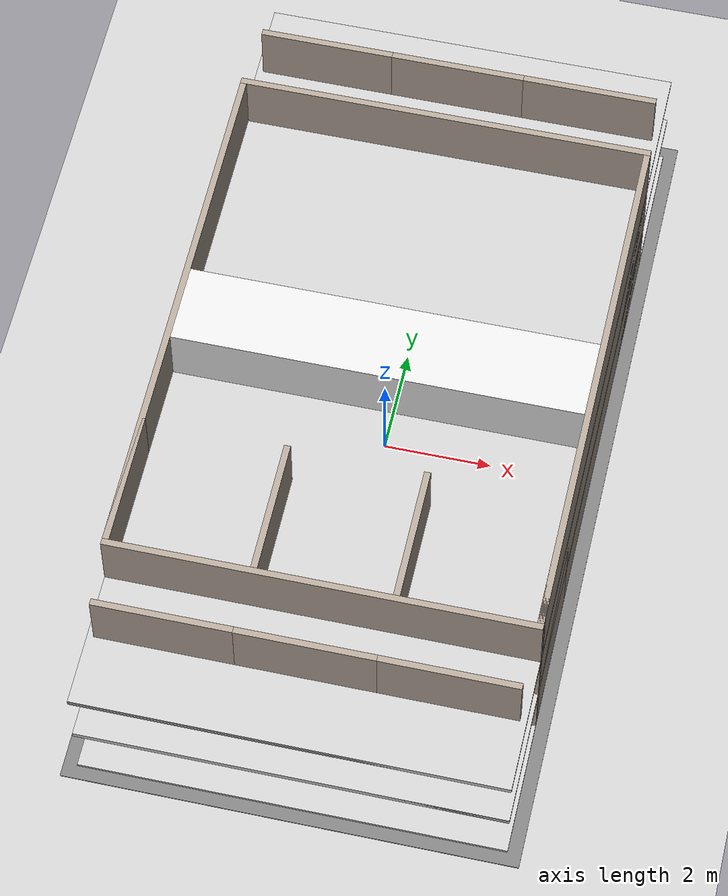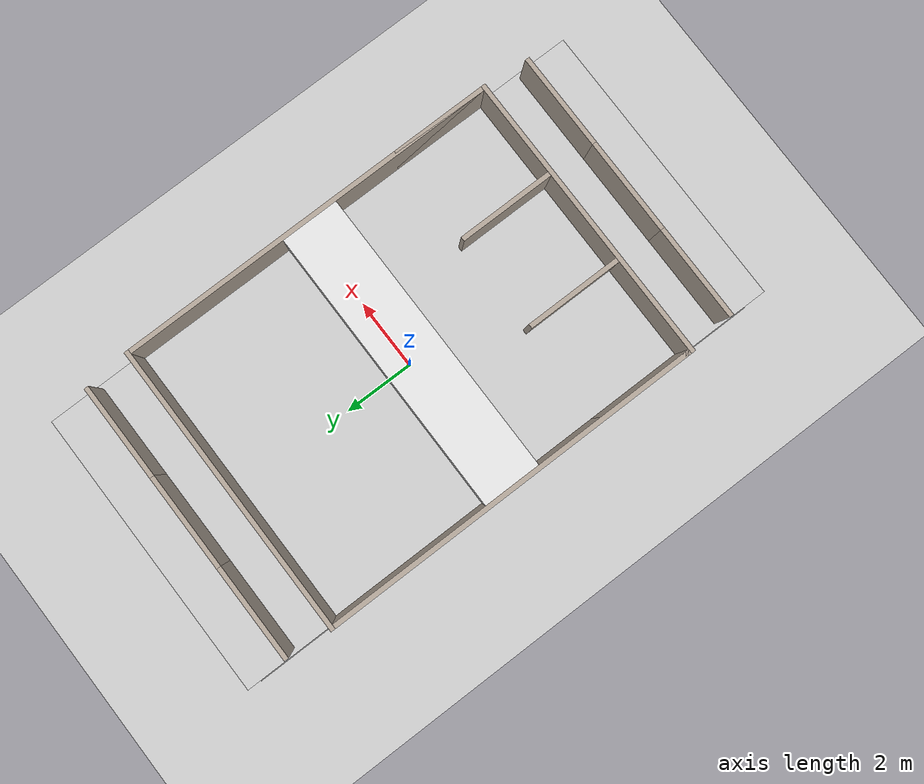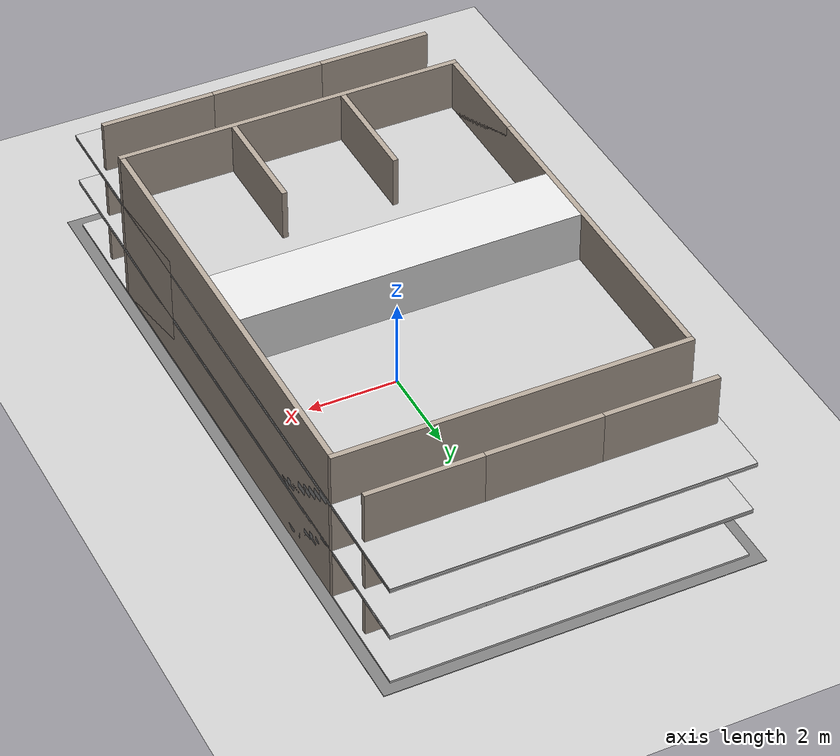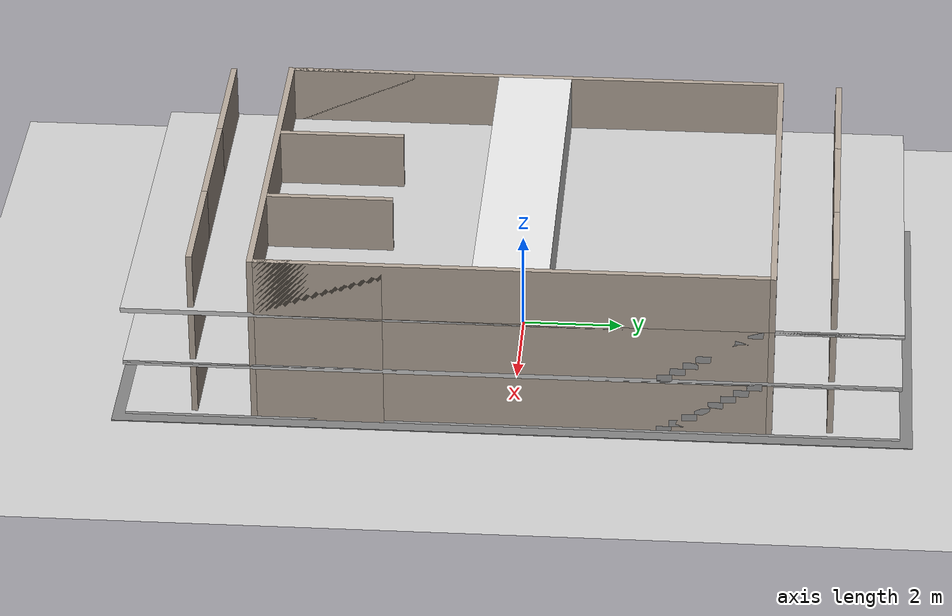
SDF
<?xml version="1.0" ?>
<sdf version="1.5">
    <world name="hotel_building">

        <gui fullscreen='false'>
        <camera name='user_camera'>
            <pose>15 -15 10 0 0.5 -2.0</pose>
            <view_controller>orbit</view_controller>
        </camera>
        </gui>

        <physics type="ode">
        <max_step_size>0.001</max_step_size>
        <real_time_factor>1</real_time_factor>
        <real_time_update_rate>1000</real_time_update_rate>
        <gravity>0 0 -9.81</gravity>
            <ode>
                <solver>
                <type>quick</type>
                <iters>50</iters>
                <sor>1.3</sor>
                </solver>
                <constraints>
                <cfm>0.0</cfm>
                <erp>0.2</erp>
                <contact_max_correcting_vel>10.0</contact_max_correcting_vel>
                <contact_surface_layer>0.001</contact_surface_layer>
                </constraints>
            </ode>
        </physics>

        <scene>
            <sky>
                <clouds>
                    <speed>12</speed>
                </clouds>
            </sky>
        </scene>

        <include>
            <uri>model://sun</uri>
        </include>

        <include>
            <uri>model://ground_plane</uri>
        </include>

        <include>
            <uri>model://hotel_building</uri>
            <pose>0 0 0 0 0 0</pose>
        </include>

    </world>
</sdf>

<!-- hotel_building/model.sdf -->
<sdf version='1.7'>
  <model name='HotelBuilding'>
    <static>true</static>
    <allow_auto_disable>1</allow_auto_disable>

    <link name='building_base'>
        <pose>0 0 -0.05 0 0 0</pose>
        <visual name='visual'>
            <geometry>
                <box>
                    <size>8.24 15.74 0.1</size>
                </box>
            </geometry>
            <material>
                <ambient>0.4 0.4 0.4 1</ambient>
                <diffuse>0.5 0.5 0.5 1</diffuse>
            </material>
        </visual>
        <collision name='collision'>
            <geometry>
                <box>
                    <size>8.24 15.74 0.1</size>
                </box>
            </geometry>
        </collision>
    </link>

        <link name='floor_base_f0'>
            <pose>0 0 0.0 0 0 0</pose>
            <visual name='visual'>
                <geometry>
                    <box>
                        <size>7.74 15.24 0.1</size>
                    </box>
                </geometry>
                <material>
                    <ambient>0.7 0.7 0.7 1</ambient>
                    <diffuse>0.8 0.8 0.8 1</diffuse>
                </material>
            </visual>
            <collision name='collision'>
                <geometry>
                    <box>
                        <size>7.74 15.24 0.1</size>
                    </box>
                </geometry>
                <surface>
                    <friction>
                        <ode>
                            <mu>1.0</mu>
                            <mu2>1.0</mu2>
                        </ode>
                    </friction>
                </surface>
            </collision>
        </link>

        <link name='corridor_f0'>
            <pose>0 0 0.6 0 0 0</pose>
            <visual name='visual'>
                <geometry>
                    <box>
                        <size>7.5 1.5 1.2</size>
                    </box>
                </geometry>
                <material>
                    <ambient>0.85 0.85 0.85 1</ambient>
                    <diffuse>0.9 0.9 0.9 1</diffuse>
                </material>
            </visual>
            <collision name='collision'>
                <geometry>
                    <box>
                        <size>7.5 1.5 1.2</size>
                    </box>
                </geometry>
                <surface>
                    <friction>
                        <ode>
                            <mu>1.0</mu>
                            <mu2>1.0</mu2>
                        </ode>
                    </friction>
                </surface>
            </collision>
        </link>

        <link name='corridor_front_wall_f0'>
            <pose>0 5.06 0.6 0 0 0</pose>
            <visual name='visual'>
                <geometry>
                    <box>
                        <size>7.74 0.12 1.2</size>
                    </box>
                </geometry>
                <material>
                    <ambient>0.6 0.55 0.5 1</ambient>
                    <diffuse>0.7 0.65 0.6 1</diffuse>
                </material>
            </visual>
            <collision name='collision'>
                <geometry>
                    <box>
                        <size>7.74 0.12 1.2</size>
                    </box>
                </geometry>
            </collision>
        </link>

        <link name='corridor_rear_wall_f0'>
            <pose>0 -5.06 0.6 0 0 0</pose>
            <visual name='visual'>
                <geometry>
                    <box>
                        <size>7.74 0.12 1.2</size>
                    </box>
                </geometry>
                <material>
                    <ambient>0.6 0.55 0.5 1</ambient>
                    <diffuse>0.7 0.65 0.6 1</diffuse>
                </material>
            </visual>
            <collision name='collision'>
                <geometry>
                    <box>
                        <size>7.74 0.12 1.2</size>
                    </box>
                </geometry>
            </collision>
        </link>

        <link name='room_front_wall_f0_r0'>
            <pose>-2.5 6.25 0.6 0 0 0</pose>
            <visual name='visual'>
                <geometry>
                    <box>
                        <size>2.5 0.12 1.2</size>
                    </box>
                </geometry>
                <material>
                    <ambient>0.6 0.55 0.5 1</ambient>
                    <diffuse>0.7 0.65 0.6 1</diffuse>
                </material>
            </visual>
            <collision name='collision'>
                <geometry>
                    <box>
                        <size>2.5 0.12 1.2</size>
                    </box>
                </geometry>
            </collision>
        </link>

        <link name='room_rear_wall_f0_r0'>
            <pose>-2.5 -6.25 0.6 0 0 0</pose>
            <visual name='visual'>
                <geometry>
                    <box>
                        <size>2.5 0.12 1.2</size>
                    </box>
                </geometry>
                <material>
                    <ambient>0.6 0.55 0.5 1</ambient>
                    <diffuse>0.7 0.65 0.6 1</diffuse>
                </material>
            </visual>
            <collision name='collision'>
                <geometry>
                    <box>
                        <size>2.5 0.12 1.2</size>
                    </box>
                </geometry>
            </collision>
        </link>

        <link name='room_side_wall_f0_r0_left'>
            <pose>-3.81 -3.75 0.6 0 0 0</pose>
            <visual name='visual'>
                <geometry>
                    <box>
                        <size>0.12 2.5 1.2</size>
                    </box>
                </geometry>
                <material>
                    <ambient>0.6 0.55 0.5 1</ambient>
                    <diffuse>0.7 0.65 0.6 1</diffuse>
                </material>
            </visual>
            <collision name='collision'>
                <geometry>
                    <box>
                        <size>0.12 2.5 1.2</size>
                    </box>
                </geometry>
            </collision>
        </link>

        <link name='room_divider_f0_r0'>
            <pose>-1.19 -3.75 0.6 0 0 0</pose>
            <visual name='visual'>
                <geometry>
                    <box>
                        <size>0.12 2.5 1.2</size>
                    </box>
                </geometry>
                <material>
                    <ambient>0.6 0.55 0.5 1</ambient>
                    <diffuse>0.7 0.65 0.6 1</diffuse>
                </material>
            </visual>
            <collision name='collision'>
                <geometry>
                    <box>
                        <size>0.12 2.5 1.2</size>
                    </box>
                </geometry>
            </collision>
        </link>

        <link name='room_front_wall_f0_r1'>
            <pose>0.0 6.25 0.6 0 0 0</pose>
            <visual name='visual'>
                <geometry>
                    <box>
                        <size>2.5 0.12 1.2</size>
                    </box>
                </geometry>
                <material>
                    <ambient>0.6 0.55 0.5 1</ambient>
                    <diffuse>0.7 0.65 0.6 1</diffuse>
                </material>
            </visual>
            <collision name='collision'>
                <geometry>
                    <box>
                        <size>2.5 0.12 1.2</size>
                    </box>
                </geometry>
            </collision>
        </link>

        <link name='room_rear_wall_f0_r1'>
            <pose>0.0 -6.25 0.6 0 0 0</pose>
            <visual name='visual'>
                <geometry>
                    <box>
                        <size>2.5 0.12 1.2</size>
                    </box>
                </geometry>
                <material>
                    <ambient>0.6 0.55 0.5 1</ambient>
                    <diffuse>0.7 0.65 0.6 1</diffuse>
                </material>
            </visual>
            <collision name='collision'>
                <geometry>
                    <box>
                        <size>2.5 0.12 1.2</size>
                    </box>
                </geometry>
            </collision>
        </link>

        <link name='room_side_wall_f0_r1_left'>
            <pose>-3.81 -3.75 0.6 0 0 0</pose>
            <visual name='visual'>
                <geometry>
                    <box>
                        <size>0.12 2.5 1.2</size>
                    </box>
                </geometry>
                <material>
                    <ambient>0.6 0.55 0.5 1</ambient>
                    <diffuse>0.7 0.65 0.6 1</diffuse>
                </material>
            </visual>
            <collision name='collision'>
                <geometry>
                    <box>
                        <size>0.12 2.5 1.2</size>
                    </box>
                </geometry>
            </collision>
        </link>

        <link name='room_divider_f0_r1'>
            <pose>1.31 -3.75 0.6 0 0 0</pose>
            <visual name='visual'>
                <geometry>
                    <box>
                        <size>0.12 2.5 1.2</size>
                    </box>
                </geometry>
                <material>
                    <ambient>0.6 0.55 0.5 1</ambient>
                    <diffuse>0.7 0.65 0.6 1</diffuse>
                </material>
            </visual>
            <collision name='collision'>
                <geometry>
                    <box>
                        <size>0.12 2.5 1.2</size>
                    </box>
                </geometry>
            </collision>
        </link>

        <link name='room_front_wall_f0_r2'>
            <pose>2.5 6.25 0.6 0 0 0</pose>
            <visual name='visual'>
                <geometry>
                    <box>
                        <size>2.5 0.12 1.2</size>
                    </box>
                </geometry>
                <material>
                    <ambient>0.6 0.55 0.5 1</ambient>
                    <diffuse>0.7 0.65 0.6 1</diffuse>
                </material>
            </visual>
            <collision name='collision'>
                <geometry>
                    <box>
                        <size>2.5 0.12 1.2</size>
                    </box>
                </geometry>
            </collision>
        </link>

        <link name='room_rear_wall_f0_r2'>
            <pose>2.5 -6.25 0.6 0 0 0</pose>
            <visual name='visual'>
                <geometry>
                    <box>
                        <size>2.5 0.12 1.2</size>
                    </box>
                </geometry>
                <material>
                    <ambient>0.6 0.55 0.5 1</ambient>
                    <diffuse>0.7 0.65 0.6 1</diffuse>
                </material>
            </visual>
            <collision name='collision'>
                <geometry>
                    <box>
                        <size>2.5 0.12 1.2</size>
                    </box>
                </geometry>
            </collision>
        </link>

        <link name='room_side_wall_f0_r2_left'>
            <pose>-3.81 -3.75 0.6 0 0 0</pose>
            <visual name='visual'>
                <geometry>
                    <box>
                        <size>0.12 2.5 1.2</size>
                    </box>
                </geometry>
                <material>
                    <ambient>0.6 0.55 0.5 1</ambient>
                    <diffuse>0.7 0.65 0.6 1</diffuse>
                </material>
            </visual>
            <collision name='collision'>
                <geometry>
                    <box>
                        <size>0.12 2.5 1.2</size>
                    </box>
                </geometry>
            </collision>
        </link>

        <link name='room_side_wall_f0_r2_right'>
            <pose>3.81 -3.75 0.6 0 0 0</pose>
            <visual name='visual'>
                <geometry>
                    <box>
                        <size>0.12 2.5 1.2</size>
                    </box>
                </geometry>
                <material>
                    <ambient>0.6 0.55 0.5 1</ambient>
                    <diffuse>0.7 0.65 0.6 1</diffuse>
                </material>
            </visual>
            <collision name='collision'>
                <geometry>
                    <box>
                        <size>0.12 2.5 1.2</size>
                    </box>
                </geometry>
            </collision>
        </link>

        <link name='corridor_left_wall_f0'>
            <pose>-3.81 0 0.6 0 0 0</pose>
            <visual name='visual'>
                <geometry>
                    <box>
                        <size>0.12 10.0 1.2</size>
                    </box>
                </geometry>
                <material>
                    <ambient>0.6 0.55 0.5 1</ambient>
                    <diffuse>0.7 0.65 0.6 1</diffuse>
                </material>
            </visual>
            <collision name='collision'>
                <geometry>
                    <box>
                        <size>0.12 10.0 1.2</size>
                    </box>
                </geometry>
            </collision>
        </link>

        <link name='corridor_right_wall_f0'>
            <pose>3.81 0 0.6 0 0 0</pose>
            <visual name='visual'>
                <geometry>
                    <box>
                        <size>0.12 10.0 1.2</size>
                    </box>
                </geometry>
                <material>
                    <ambient>0.6 0.55 0.5 1</ambient>
                    <diffuse>0.7 0.65 0.6 1</diffuse>
                </material>
            </visual>
            <collision name='collision'>
                <geometry>
                    <box>
                        <size>0.12 10.0 1.2</size>
                    </box>
                </geometry>
            </collision>
        </link>

        <link name='ceiling_f0'>
            <pose>0 0 1.2 0 0 0</pose>
            <visual name='visual'>
                <geometry>
                    <box>
                        <size>7.74 15.24 0.05</size>
                    </box>
                </geometry>
                <material>
                    <ambient>0.9 0.9 0.9 1</ambient>
                    <diffuse>1.0 1.0 1.0 1</diffuse>
                </material>
            </visual>
            <collision name='collision'>
                <geometry>
                    <box>
                        <size>7.74 15.24 0.05</size>
                    </box>
                </geometry>
            </collision>
        </link>

        <link name='floor_base_f1'>
            <pose>0 0 1.2 0 0 0</pose>
            <visual name='visual'>
                <geometry>
                    <box>
                        <size>7.74 15.24 0.1</size>
                    </box>
                </geometry>
                <material>
                    <ambient>0.7 0.7 0.7 1</ambient>
                    <diffuse>0.8 0.8 0.8 1</diffuse>
                </material>
            </visual>
            <collision name='collision'>
                <geometry>
                    <box>
                        <size>7.74 15.24 0.1</size>
                    </box>
                </geometry>
                <surface>
                    <friction>
                        <ode>
                            <mu>1.0</mu>
                            <mu2>1.0</mu2>
                        </ode>
                    </friction>
                </surface>
            </collision>
        </link>

        <link name='corridor_f1'>
            <pose>0 0 1.7999999999999998 0 0 0</pose>
            <visual name='visual'>
                <geometry>
                    <box>
                        <size>7.5 1.5 1.2</size>
                    </box>
                </geometry>
                <material>
                    <ambient>0.85 0.85 0.85 1</ambient>
                    <diffuse>0.9 0.9 0.9 1</diffuse>
                </material>
            </visual>
            <collision name='collision'>
                <geometry>
                    <box>
                        <size>7.5 1.5 1.2</size>
                    </box>
                </geometry>
                <surface>
                    <friction>
                        <ode>
                            <mu>1.0</mu>
                            <mu2>1.0</mu2>
                        </ode>
                    </friction>
                </surface>
            </collision>
        </link>

        <link name='corridor_front_wall_f1'>
            <pose>0 5.06 1.7999999999999998 0 0 0</pose>
            <visual name='visual'>
                <geometry>
                    <box>
                        <size>7.74 0.12 1.2</size>
                    </box>
                </geometry>
                <material>
                    <ambient>0.6 0.55 0.5 1</ambient>
                    <diffuse>0.7 0.65 0.6 1</diffuse>
                </material>
            </visual>
            <collision name='collision'>
                <geometry>
                    <box>
                        <size>7.74 0.12 1.2</size>
                    </box>
                </geometry>
            </collision>
        </link>

        <link name='corridor_rear_wall_f1'>
            <pose>0 -5.06 1.7999999999999998 0 0 0</pose>
            <visual name='visual'>
                <geometry>
                    <box>
                        <size>7.74 0.12 1.2</size>
                    </box>
                </geometry>
                <material>
                    <ambient>0.6 0.55 0.5 1</ambient>
                    <diffuse>0.7 0.65 0.6 1</diffuse>
                </material>
            </visual>
            <collision name='collision'>
                <geometry>
                    <box>
                        <size>7.74 0.12 1.2</size>
                    </box>
                </geometry>
            </collision>
        </link>

        <link name='room_front_wall_f1_r0'>
            <pose>-2.5 6.25 1.7999999999999998 0 0 0</pose>
            <visual name='visual'>
                <geometry>
                    <box>
                        <size>2.5 0.12 1.2</size>
                    </box>
                </geometry>
                <material>
                    <ambient>0.6 0.55 0.5 1</ambient>
                    <diffuse>0.7 0.65 0.6 1</diffuse>
                </material>
            </visual>
            <collision name='collision'>
                <geometry>
                    <box>
                        <size>2.5 0.12 1.2</size>
                    </box>
                </geometry>
            </collision>
        </link>

        <link name='room_rear_wall_f1_r0'>
            <pose>-2.5 -6.25 1.7999999999999998 0 0 0</pose>
            <visual name='visual'>
                <geometry>
                    <box>
                        <size>2.5 0.12 1.2</size>
                    </box>
                </geometry>
                <material>
                    <ambient>0.6 0.55 0.5 1</ambient>
                    <diffuse>0.7 0.65 0.6 1</diffuse>
                </material>
            </visual>
            <collision name='collision'>
                <geometry>
                    <box>
                        <size>2.5 0.12 1.2</size>
                    </box>
                </geometry>
            </collision>
        </link>

        <link name='room_side_wall_f1_r0_left'>
            <pose>-3.81 -3.75 1.7999999999999998 0 0 0</pose>
            <visual name='visual'>
                <geometry>
                    <box>
                        <size>0.12 2.5 1.2</size>
                    </box>
                </geometry>
                <material>
                    <ambient>0.6 0.55 0.5 1</ambient>
                    <diffuse>0.7 0.65 0.6 1</diffuse>
                </material>
            </visual>
            <collision name='collision'>
                <geometry>
                    <box>
                        <size>0.12 2.5 1.2</size>
                    </box>
                </geometry>
            </collision>
        </link>

        <link name='room_divider_f1_r0'>
            <pose>-1.19 -3.75 1.7999999999999998 0 0 0</pose>
            <visual name='visual'>
                <geometry>
                    <box>
                        <size>0.12 2.5 1.2</size>
                    </box>
                </geometry>
                <material>
                    <ambient>0.6 0.55 0.5 1</ambient>
                    <diffuse>0.7 0.65 0.6 1</diffuse>
                </material>
            </visual>
            <collision name='collision'>
                <geometry>
                    <box>
                        <size>0.12 2.5 1.2</size>
                    </box>
                </geometry>
            </collision>
        </link>

        <link name='room_front_wall_f1_r1'>
            <pose>0.0 6.25 1.7999999999999998 0 0 0</pose>
            <visual name='visual'>
                <geometry>
                    <box>
                        <size>2.5 0.12 1.2</size>
                    </box>
                </geometry>
                <material>
                    <ambient>0.6 0.55 0.5 1</ambient>
                    <diffuse>0.7 0.65 0.6 1</diffuse>
                </material>
            </visual>
            <collision name='collision'>
                <geometry>
                    <box>
                        <size>2.5 0.12 1.2</size>
                    </box>
                </geometry>
            </collision>
        </link>

        <link name='room_rear_wall_f1_r1'>
            <pose>0.0 -6.25 1.7999999999999998 0 0 0</pose>
            <visual name='visual'>
                <geometry>
                    <box>
                        <size>2.5 0.12 1.2</size>
                    </box>
                </geometry>
                <material>
                    <ambient>0.6 0.55 0.5 1</ambient>
                    <diffuse>0.7 0.65 0.6 1</diffuse>
                </material>
            </visual>
            <collision name='collision'>
                <geometry>
                    <box>
                        <size>2.5 0.12 1.2</size>
                    </box>
                </geometry>
            </collision>
        </link>

        <link name='room_side_wall_f1_r1_left'>
            <pose>-3.81 -3.75 1.7999999999999998 0 0 0</pose>
            <visual name='visual'>
                <geometry>
                    <box>
                        <size>0.12 2.5 1.2</size>
                    </box>
                </geometry>
                <material>
                    <ambient>0.6 0.55 0.5 1</ambient>
                    <diffuse>0.7 0.65 0.6 1</diffuse>
                </material>
            </visual>
            <collision name='collision'>
                <geometry>
                    <box>
                        <size>0.12 2.5 1.2</size>
                    </box>
                </geometry>
            </collision>
        </link>

        <link name='room_divider_f1_r1'>
            <pose>1.31 -3.75 1.7999999999999998 0 0 0</pose>
            <visual name='visual'>
                <geometry>
                    <box>
                        <size>0.12 2.5 1.2</size>
                    </box>
                </geometry>
                <material>
                    <ambient>0.6 0.55 0.5 1</ambient>
                    <diffuse>0.7 0.65 0.6 1</diffuse>
                </material>
            </visual>
            <collision name='collision'>
                <geometry>
                    <box>
                        <size>0.12 2.5 1.2</size>
                    </box>
                </geometry>
            </collision>
        </link>

        <link name='room_front_wall_f1_r2'>
            <pose>2.5 6.25 1.7999999999999998 0 0 0</pose>
            <visual name='visual'>
                <geometry>
                    <box>
                        <size>2.5 0.12 1.2</size>
                    </box>
                </geometry>
                <material>
                    <ambient>0.6 0.55 0.5 1</ambient>
                    <diffuse>0.7 0.65 0.6 1</diffuse>
                </material>
            </visual>
            <collision name='collision'>
                <geometry>
                    <box>
                        <size>2.5 0.12 1.2</size>
                    </box>
                </geometry>
            </collision>
        </link>

        <link name='room_rear_wall_f1_r2'>
            <pose>2.5 -6.25 1.7999999999999998 0 0 0</pose>
            <visual name='visual'>
                <geometry>
                    <box>
                        <size>2.5 0.12 1.2</size>
                    </box>
                </geometry>
                <material>
                    <ambient>0.6 0.55 0.5 1</ambient>
                    <diffuse>0.7 0.65 0.6 1</diffuse>
                </material>
            </visual>
            <collision name='collision'>
                <geometry>
                    <box>
                        <size>2.5 0.12 1.2</size>
                    </box>
                </geometry>
            </collision>
        </link>

        <link name='room_side_wall_f1_r2_left'>
            <pose>-3.81 -3.75 1.7999999999999998 0 0 0</pose>
            <visual name='visual'>
                <geometry>
                    <box>
                        <size>0.12 2.5 1.2</size>
                    </box>
                </geometry>
                <material>
                    <ambient>0.6 0.55 0.5 1</ambient>
                    <diffuse>0.7 0.65 0.6 1</diffuse>
                </material>
            </visual>
            <collision name='collision'>
                <geometry>
                    <box>
                        <size>0.12 2.5 1.2</size>
                    </box>
                </geometry>
            </collision>
        </link>

        <link name='room_side_wall_f1_r2_right'>
            <pose>3.81 -3.75 1.7999999999999998 0 0 0</pose>
            <visual name='visual'>
                <geometry>
                    <box>
                        <size>0.12 2.5 1.2</size>
                    </box>
                </geometry>
                <material>
                    <ambient>0.6 0.55 0.5 1</ambient>
                    <diffuse>0.7 0.65 0.6 1</diffuse>
                </material>
            </visual>
            <collision name='collision'>
                <geometry>
                    <box>
                        <size>0.12 2.5 1.2</size>
                    </box>
                </geometry>
            </collision>
        </link>

        <link name='corridor_left_wall_f1'>
            <pose>-3.81 0 1.7999999999999998 0 0 0</pose>
            <visual name='visual'>
                <geometry>
                    <box>
                        <size>0.12 10.0 1.2</size>
                    </box>
                </geometry>
                <material>
                    <ambient>0.6 0.55 0.5 1</ambient>
                    <diffuse>0.7 0.65 0.6 1</diffuse>
                </material>
            </visual>
            <collision name='collision'>
                <geometry>
                    <box>
                        <size>0.12 10.0 1.2</size>
                    </box>
                </geometry>
            </collision>
        </link>

        <link name='corridor_right_wall_f1'>
            <pose>3.81 0 1.7999999999999998 0 0 0</pose>
            <visual name='visual'>
                <geometry>
                    <box>
                        <size>0.12 10.0 1.2</size>
                    </box>
                </geometry>
                <material>
                    <ambient>0.6 0.55 0.5 1</ambient>
                    <diffuse>0.7 0.65 0.6 1</diffuse>
                </material>
            </visual>
            <collision name='collision'>
                <geometry>
                    <box>
                        <size>0.12 10.0 1.2</size>
                    </box>
                </geometry>
            </collision>
        </link>

        <link name='ceiling_f1'>
            <pose>0 0 2.4 0 0 0</pose>
            <visual name='visual'>
                <geometry>
                    <box>
                        <size>7.74 15.24 0.05</size>
                    </box>
                </geometry>
                <material>
                    <ambient>0.9 0.9 0.9 1</ambient>
                    <diffuse>1.0 1.0 1.0 1</diffuse>
                </material>
            </visual>
            <collision name='collision'>
                <geometry>
                    <box>
                        <size>7.74 15.24 0.05</size>
                    </box>
                </geometry>
            </collision>
        </link>

        <link name='floor_base_f2'>
            <pose>0 0 2.4 0 0 0</pose>
            <visual name='visual'>
                <geometry>
                    <box>
                        <size>7.74 15.24 0.1</size>
                    </box>
                </geometry>
                <material>
                    <ambient>0.7 0.7 0.7 1</ambient>
                    <diffuse>0.8 0.8 0.8 1</diffuse>
                </material>
            </visual>
            <collision name='collision'>
                <geometry>
                    <box>
                        <size>7.74 15.24 0.1</size>
                    </box>
                </geometry>
                <surface>
                    <friction>
                        <ode>
                            <mu>1.0</mu>
                            <mu2>1.0</mu2>
                        </ode>
                    </friction>
                </surface>
            </collision>
        </link>

        <link name='corridor_f2'>
            <pose>0 0 3.0 0 0 0</pose>
            <visual name='visual'>
                <geometry>
                    <box>
                        <size>7.5 1.5 1.2</size>
                    </box>
                </geometry>
                <material>
                    <ambient>0.85 0.85 0.85 1</ambient>
                    <diffuse>0.9 0.9 0.9 1</diffuse>
                </material>
            </visual>
            <collision name='collision'>
                <geometry>
                    <box>
                        <size>7.5 1.5 1.2</size>
                    </box>
                </geometry>
                <surface>
                    <friction>
                        <ode>
                            <mu>1.0</mu>
                            <mu2>1.0</mu2>
                        </ode>
                    </friction>
                </surface>
            </collision>
        </link>

        <link name='corridor_front_wall_f2'>
            <pose>0 5.06 3.0 0 0 0</pose>
            <visual name='visual'>
                <geometry>
                    <box>
                        <size>7.74 0.12 1.2</size>
                    </box>
                </geometry>
                <material>
                    <ambient>0.6 0.55 0.5 1</ambient>
                    <diffuse>0.7 0.65 0.6 1</diffuse>
                </material>
            </visual>
            <collision name='collision'>
                <geometry>
                    <box>
                        <size>7.74 0.12 1.2</size>
                    </box>
                </geometry>
            </collision>
        </link>

        <link name='corridor_rear_wall_f2'>
            <pose>0 -5.06 3.0 0 0 0</pose>
            <visual name='visual'>
                <geometry>
                    <box>
                        <size>7.74 0.12 1.2</size>
                    </box>
                </geometry>
                <material>
                    <ambient>0.6 0.55 0.5 1</ambient>
                    <diffuse>0.7 0.65 0.6 1</diffuse>
                </material>
            </visual>
            <collision name='collision'>
                <geometry>
                    <box>
                        <size>7.74 0.12 1.2</size>
                    </box>
                </geometry>
            </collision>
        </link>

        <link name='room_front_wall_f2_r0'>
            <pose>-2.5 6.25 3.0 0 0 0</pose>
            <visual name='visual'>
                <geometry>
                    <box>
                        <size>2.5 0.12 1.2</size>
                    </box>
                </geometry>
                <material>
                    <ambient>0.6 0.55 0.5 1</ambient>
                    <diffuse>0.7 0.65 0.6 1</diffuse>
                </material>
            </visual>
            <collision name='collision'>
                <geometry>
                    <box>
                        <size>2.5 0.12 1.2</size>
                    </box>
                </geometry>
            </collision>
        </link>

        <link name='room_rear_wall_f2_r0'>
            <pose>-2.5 -6.25 3.0 0 0 0</pose>
            <visual name='visual'>
                <geometry>
                    <box>
                        <size>2.5 0.12 1.2</size>
                    </box>
                </geometry>
                <material>
                    <ambient>0.6 0.55 0.5 1</ambient>
                    <diffuse>0.7 0.65 0.6 1</diffuse>
                </material>
            </visual>
            <collision name='collision'>
                <geometry>
                    <box>
                        <size>2.5 0.12 1.2</size>
                    </box>
                </geometry>
            </collision>
        </link>

        <link name='room_side_wall_f2_r0_left'>
            <pose>-3.81 -3.75 3.0 0 0 0</pose>
            <visual name='visual'>
                <geometry>
                    <box>
                        <size>0.12 2.5 1.2</size>
                    </box>
                </geometry>
                <material>
                    <ambient>0.6 0.55 0.5 1</ambient>
                    <diffuse>0.7 0.65 0.6 1</diffuse>
                </material>
            </visual>
            <collision name='collision'>
                <geometry>
                    <box>
                        <size>0.12 2.5 1.2</size>
                    </box>
                </geometry>
            </collision>
        </link>

        <link name='room_divider_f2_r0'>
            <pose>-1.19 -3.75 3.0 0 0 0</pose>
            <visual name='visual'>
                <geometry>
                    <box>
                        <size>0.12 2.5 1.2</size>
                    </box>
                </geometry>
                <material>
                    <ambient>0.6 0.55 0.5 1</ambient>
                    <diffuse>0.7 0.65 0.6 1</diffuse>
                </material>
            </visual>
            <collision name='collision'>
                <geometry>
                    <box>
                        <size>0.12 2.5 1.2</size>
                    </box>
                </geometry>
            </collision>
        </link>

        <link name='room_front_wall_f2_r1'>
            <pose>0.0 6.25 3.0 0 0 0</pose>
            <visual name='visual'>
                <geometry>
                    <box>
                        <size>2.5 0.12 1.2</size>
                    </box>
                </geometry>
                <material>
                    <ambient>0.6 0.55 0.5 1</ambient>
                    <diffuse>0.7 0.65 0.6 1</diffuse>
                </material>
            </visual>
            <collision name='collision'>
                <geometry>
                    <box>
                        <size>2.5 0.12 1.2</size>
                    </box>
                </geometry>
            </collision>
        </link>

        <link name='room_rear_wall_f2_r1'>
            <pose>0.0 -6.25 3.0 0 0 0</pose>
            <visual name='visual'>
                <geometry>
                    <box>
                        <size>2.5 0.12 1.2</size>
                    </box>
                </geometry>
                <material>
                    <ambient>0.6 0.55 0.5 1</ambient>
                    <diffuse>0.7 0.65 0.6 1</diffuse>
                </material>
            </visual>
            <collision name='collision'>
                <geometry>
                    <box>
                        <size>2.5 0.12 1.2</size>
                    </box>
                </geometry>
            </collision>
        </link>

        <link name='room_side_wall_f2_r1_left'>
            <pose>-3.81 -3.75 3.0 0 0 0</pose>
            <visual name='visual'>
                <geometry>
                    <box>
                        <size>0.12 2.5 1.2</size>
                    </box>
                </geometry>
                <material>
                    <ambient>0.6 0.55 0.5 1</ambient>
                    <diffuse>0.7 0.65 0.6 1</diffuse>
                </material>
            </visual>
            <collision name='collision'>
                <geometry>
                    <box>
                        <size>0.12 2.5 1.2</size>
                    </box>
                </geometry>
            </collision>
        </link>

        <link name='room_divider_f2_r1'>
            <pose>1.31 -3.75 3.0 0 0 0</pose>
            <visual name='visual'>
                <geometry>
                    <box>
                        <size>0.12 2.5 1.2</size>
                    </box>
                </geometry>
                <material>
                    <ambient>0.6 0.55 0.5 1</ambient>
                    <diffuse>0.7 0.65 0.6 1</diffuse>
                </material>
            </visual>
            <collision name='collision'>
                <geometry>
                    <box>
                        <size>0.12 2.5 1.2</size>
                    </box>
                </geometry>
            </collision>
        </link>

        <link name='room_front_wall_f2_r2'>
            <pose>2.5 6.25 3.0 0 0 0</pose>
            <visual name='visual'>
                <geometry>
                    <box>
                        <size>2.5 0.12 1.2</size>
                    </box>
                </geometry>
                <material>
                    <ambient>0.6 0.55 0.5 1</ambient>
                    <diffuse>0.7 0.65 0.6 1</diffuse>
                </material>
            </visual>
            <collision name='collision'>
                <geometry>
                    <box>
                        <size>2.5 0.12 1.2</size>
                    </box>
                </geometry>
            </collision>
        </link>

        <link name='room_rear_wall_f2_r2'>
            <pose>2.5 -6.25 3.0 0 0 0</pose>
            <visual name='visual'>
                <geometry>
                    <box>
                        <size>2.5 0.12 1.2</size>
                    </box>
                </geometry>
                <material>
                    <ambient>0.6 0.55 0.5 1</ambient>
                    <diffuse>0.7 0.65 0.6 1</diffuse>
                </material>
            </visual>
            <collision name='collision'>
                <geometry>
                    <box>
                        <size>2.5 0.12 1.2</size>
                    </box>
                </geometry>
            </collision>
        </link>

        <link name='room_side_wall_f2_r2_left'>
            <pose>-3.81 -3.75 3.0 0 0 0</pose>
            <visual name='visual'>
                <geometry>
                    <box>
                        <size>0.12 2.5 1.2</size>
                    </box>
                </geometry>
                <material>
                    <ambient>0.6 0.55 0.5 1</ambient>
                    <diffuse>0.7 0.65 0.6 1</diffuse>
                </material>
            </visual>
            <collision name='collision'>
                <geometry>
                    <box>
                        <size>0.12 2.5 1.2</size>
                    </box>
                </geometry>
            </collision>
        </link>

        <link name='room_side_wall_f2_r2_right'>
            <pose>3.81 -3.75 3.0 0 0 0</pose>
            <visual name='visual'>
                <geometry>
                    <box>
                        <size>0.12 2.5 1.2</size>
                    </box>
                </geometry>
                <material>
                    <ambient>0.6 0.55 0.5 1</ambient>
                    <diffuse>0.7 0.65 0.6 1</diffuse>
                </material>
            </visual>
            <collision name='collision'>
                <geometry>
                    <box>
                        <size>0.12 2.5 1.2</size>
                    </box>
                </geometry>
            </collision>
        </link>

        <link name='corridor_left_wall_f2'>
            <pose>-3.81 0 3.0 0 0 0</pose>
            <visual name='visual'>
                <geometry>
                    <box>
                        <size>0.12 10.0 1.2</size>
                    </box>
                </geometry>
                <material>
                    <ambient>0.6 0.55 0.5 1</ambient>
                    <diffuse>0.7 0.65 0.6 1</diffuse>
                </material>
            </visual>
            <collision name='collision'>
                <geometry>
                    <box>
                        <size>0.12 10.0 1.2</size>
                    </box>
                </geometry>
            </collision>
        </link>

        <link name='corridor_right_wall_f2'>
            <pose>3.81 0 3.0 0 0 0</pose>
            <visual name='visual'>
                <geometry>
                    <box>
                        <size>0.12 10.0 1.2</size>
                    </box>
                </geometry>
                <material>
                    <ambient>0.6 0.55 0.5 1</ambient>
                    <diffuse>0.7 0.65 0.6 1</diffuse>
                </material>
            </visual>
            <collision name='collision'>
                <geometry>
                    <box>
                        <size>0.12 10.0 1.2</size>
                    </box>
                </geometry>
            </collision>
        </link>

        <link name='stair_f0_step0'>
            <pose>3.27 3.0 0.075 0 0 0</pose>
            <visual name='visual'>
                <geometry>
                    <box>
                        <size>1.2 0.3 0.15</size>
                    </box>
                </geometry>
                <material>
                    <ambient>0.5 0.5 0.5 1</ambient>
                    <diffuse>0.6 0.6 0.6 1</diffuse>
                </material>
            </visual>
            <collision name='collision'>
                <geometry>
                    <box>
                        <size>1.2 0.3 0.15</size>
                    </box>
                </geometry>
                <surface>
                    <friction>
                        <ode>
                            <mu>1.5</mu>
                            <mu2>1.5</mu2>
                        </ode>
                    </friction>
                </surface>
            </collision>
        </link>

        <link name='stair_f0_step1'>
            <pose>3.27 3.25 0.22499999999999998 0 0 0</pose>
            <visual name='visual'>
                <geometry>
                    <box>
                        <size>1.2 0.3 0.15</size>
                    </box>
                </geometry>
                <material>
                    <ambient>0.5 0.5 0.5 1</ambient>
                    <diffuse>0.6 0.6 0.6 1</diffuse>
                </material>
            </visual>
            <collision name='collision'>
                <geometry>
                    <box>
                        <size>1.2 0.3 0.15</size>
                    </box>
                </geometry>
                <surface>
                    <friction>
                        <ode>
                            <mu>1.5</mu>
                            <mu2>1.5</mu2>
                        </ode>
                    </friction>
                </surface>
            </collision>
        </link>

        <link name='stair_f0_step2'>
            <pose>3.27 3.5 0.375 0 0 0</pose>
            <visual name='visual'>
                <geometry>
                    <box>
                        <size>1.2 0.3 0.15</size>
                    </box>
                </geometry>
                <material>
                    <ambient>0.5 0.5 0.5 1</ambient>
                    <diffuse>0.6 0.6 0.6 1</diffuse>
                </material>
            </visual>
            <collision name='collision'>
                <geometry>
                    <box>
                        <size>1.2 0.3 0.15</size>
                    </box>
                </geometry>
                <surface>
                    <friction>
                        <ode>
                            <mu>1.5</mu>
                            <mu2>1.5</mu2>
                        </ode>
                    </friction>
                </surface>
            </collision>
        </link>

        <link name='stair_f0_step3'>
            <pose>3.27 3.75 0.5249999999999999 0 0 0</pose>
            <visual name='visual'>
                <geometry>
                    <box>
                        <size>1.2 0.3 0.15</size>
                    </box>
                </geometry>
                <material>
                    <ambient>0.5 0.5 0.5 1</ambient>
                    <diffuse>0.6 0.6 0.6 1</diffuse>
                </material>
            </visual>
            <collision name='collision'>
                <geometry>
                    <box>
                        <size>1.2 0.3 0.15</size>
                    </box>
                </geometry>
                <surface>
                    <friction>
                        <ode>
                            <mu>1.5</mu>
                            <mu2>1.5</mu2>
                        </ode>
                    </friction>
                </surface>
            </collision>
        </link>

        <link name='stair_f0_step4'>
            <pose>3.27 4.0 0.6749999999999999 0 0 0</pose>
            <visual name='visual'>
                <geometry>
                    <box>
                        <size>1.2 0.3 0.15</size>
                    </box>
                </geometry>
                <material>
                    <ambient>0.5 0.5 0.5 1</ambient>
                    <diffuse>0.6 0.6 0.6 1</diffuse>
                </material>
            </visual>
            <collision name='collision'>
                <geometry>
                    <box>
                        <size>1.2 0.3 0.15</size>
                    </box>
                </geometry>
                <surface>
                    <friction>
                        <ode>
                            <mu>1.5</mu>
                            <mu2>1.5</mu2>
                        </ode>
                    </friction>
                </surface>
            </collision>
        </link>

        <link name='stair_f0_step5'>
            <pose>3.27 4.25 0.825 0 0 0</pose>
            <visual name='visual'>
                <geometry>
                    <box>
                        <size>1.2 0.3 0.15</size>
                    </box>
                </geometry>
                <material>
                    <ambient>0.5 0.5 0.5 1</ambient>
                    <diffuse>0.6 0.6 0.6 1</diffuse>
                </material>
            </visual>
            <collision name='collision'>
                <geometry>
                    <box>
                        <size>1.2 0.3 0.15</size>
                    </box>
                </geometry>
                <surface>
                    <friction>
                        <ode>
                            <mu>1.5</mu>
                            <mu2>1.5</mu2>
                        </ode>
                    </friction>
                </surface>
            </collision>
        </link>

        <link name='stair_f0_step6'>
            <pose>3.27 4.5 0.9749999999999999 0 0 0</pose>
            <visual name='visual'>
                <geometry>
                    <box>
                        <size>1.2 0.3 0.15</size>
                    </box>
                </geometry>
                <material>
                    <ambient>0.5 0.5 0.5 1</ambient>
                    <diffuse>0.6 0.6 0.6 1</diffuse>
                </material>
            </visual>
            <collision name='collision'>
                <geometry>
                    <box>
                        <size>1.2 0.3 0.15</size>
                    </box>
                </geometry>
                <surface>
                    <friction>
                        <ode>
                            <mu>1.5</mu>
                            <mu2>1.5</mu2>
                        </ode>
                    </friction>
                </surface>
            </collision>
        </link>

        <link name='stair_f0_step7'>
            <pose>3.27 4.75 1.125 0 0 0</pose>
            <visual name='visual'>
                <geometry>
                    <box>
                        <size>1.2 0.3 0.15</size>
                    </box>
                </geometry>
                <material>
                    <ambient>0.5 0.5 0.5 1</ambient>
                    <diffuse>0.6 0.6 0.6 1</diffuse>
                </material>
            </visual>
            <collision name='collision'>
                <geometry>
                    <box>
                        <size>1.2 0.3 0.15</size>
                    </box>
                </geometry>
                <surface>
                    <friction>
                        <ode>
                            <mu>1.5</mu>
                            <mu2>1.5</mu2>
                        </ode>
                    </friction>
                </surface>
            </collision>
        </link>

        <link name='stair_ramp_f0'>
            <pose>3.27 4.0 0.6 0 0.3 0</pose>
            <visual name='visual'>
                <geometry>
                    <box>
                        <size>1.2 2.0 0.05</size>
                    </box>
                </geometry>
                <material>
                    <ambient>0.6 0.6 0.6 1</ambient>
                    <diffuse>0.7 0.7 0.7 1</diffuse>
                </material>
            </visual>
            <collision name='collision'>
                <geometry>
                    <box>
                        <size>1.2 2.0 0.05</size>
                    </box>
                </geometry>
                <surface>
                    <friction>
                        <ode>
                            <mu>1.5</mu>
                            <mu2>1.5</mu2>
                        </ode>
                    </friction>
                </surface>
            </collision>
        </link>

        <link name='stair_f1_step0'>
            <pose>3.27 3.0 1.275 0 0 0</pose>
            <visual name='visual'>
                <geometry>
                    <box>
                        <size>1.2 0.3 0.15</size>
                    </box>
                </geometry>
                <material>
                    <ambient>0.5 0.5 0.5 1</ambient>
                    <diffuse>0.6 0.6 0.6 1</diffuse>
                </material>
            </visual>
            <collision name='collision'>
                <geometry>
                    <box>
                        <size>1.2 0.3 0.15</size>
                    </box>
                </geometry>
                <surface>
                    <friction>
                        <ode>
                            <mu>1.5</mu>
                            <mu2>1.5</mu2>
                        </ode>
                    </friction>
                </surface>
            </collision>
        </link>

        <link name='stair_f1_step1'>
            <pose>3.27 3.25 1.4249999999999998 0 0 0</pose>
            <visual name='visual'>
                <geometry>
                    <box>
                        <size>1.2 0.3 0.15</size>
                    </box>
                </geometry>
                <material>
                    <ambient>0.5 0.5 0.5 1</ambient>
                    <diffuse>0.6 0.6 0.6 1</diffuse>
                </material>
            </visual>
            <collision name='collision'>
                <geometry>
                    <box>
                        <size>1.2 0.3 0.15</size>
                    </box>
                </geometry>
                <surface>
                    <friction>
                        <ode>
                            <mu>1.5</mu>
                            <mu2>1.5</mu2>
                        </ode>
                    </friction>
                </surface>
            </collision>
        </link>

        <link name='stair_f1_step2'>
            <pose>3.27 3.5 1.575 0 0 0</pose>
            <visual name='visual'>
                <geometry>
                    <box>
                        <size>1.2 0.3 0.15</size>
                    </box>
                </geometry>
                <material>
                    <ambient>0.5 0.5 0.5 1</ambient>
                    <diffuse>0.6 0.6 0.6 1</diffuse>
                </material>
            </visual>
            <collision name='collision'>
                <geometry>
                    <box>
                        <size>1.2 0.3 0.15</size>
                    </box>
                </geometry>
                <surface>
                    <friction>
                        <ode>
                            <mu>1.5</mu>
                            <mu2>1.5</mu2>
                        </ode>
                    </friction>
                </surface>
            </collision>
        </link>

        <link name='stair_f1_step3'>
            <pose>3.27 3.75 1.7249999999999999 0 0 0</pose>
            <visual name='visual'>
                <geometry>
                    <box>
                        <size>1.2 0.3 0.15</size>
                    </box>
                </geometry>
                <material>
                    <ambient>0.5 0.5 0.5 1</ambient>
                    <diffuse>0.6 0.6 0.6 1</diffuse>
                </material>
            </visual>
            <collision name='collision'>
                <geometry>
                    <box>
                        <size>1.2 0.3 0.15</size>
                    </box>
                </geometry>
                <surface>
                    <friction>
                        <ode>
                            <mu>1.5</mu>
                            <mu2>1.5</mu2>
                        </ode>
                    </friction>
                </surface>
            </collision>
        </link>

        <link name='stair_f1_step4'>
            <pose>3.27 4.0 1.875 0 0 0</pose>
            <visual name='visual'>
                <geometry>
                    <box>
                        <size>1.2 0.3 0.15</size>
                    </box>
                </geometry>
                <material>
                    <ambient>0.5 0.5 0.5 1</ambient>
                    <diffuse>0.6 0.6 0.6 1</diffuse>
                </material>
            </visual>
            <collision name='collision'>
                <geometry>
                    <box>
                        <size>1.2 0.3 0.15</size>
                    </box>
                </geometry>
                <surface>
                    <friction>
                        <ode>
                            <mu>1.5</mu>
                            <mu2>1.5</mu2>
                        </ode>
                    </friction>
                </surface>
            </collision>
        </link>

        <link name='stair_f1_step5'>
            <pose>3.27 4.25 2.025 0 0 0</pose>
            <visual name='visual'>
                <geometry>
                    <box>
                        <size>1.2 0.3 0.15</size>
                    </box>
                </geometry>
                <material>
                    <ambient>0.5 0.5 0.5 1</ambient>
                    <diffuse>0.6 0.6 0.6 1</diffuse>
                </material>
            </visual>
            <collision name='collision'>
                <geometry>
                    <box>
                        <size>1.2 0.3 0.15</size>
                    </box>
                </geometry>
                <surface>
                    <friction>
                        <ode>
                            <mu>1.5</mu>
                            <mu2>1.5</mu2>
                        </ode>
                    </friction>
                </surface>
            </collision>
        </link>

        <link name='stair_f1_step6'>
            <pose>3.27 4.5 2.175 0 0 0</pose>
            <visual name='visual'>
                <geometry>
                    <box>
                        <size>1.2 0.3 0.15</size>
                    </box>
                </geometry>
                <material>
                    <ambient>0.5 0.5 0.5 1</ambient>
                    <diffuse>0.6 0.6 0.6 1</diffuse>
                </material>
            </visual>
            <collision name='collision'>
                <geometry>
                    <box>
                        <size>1.2 0.3 0.15</size>
                    </box>
                </geometry>
                <surface>
                    <friction>
                        <ode>
                            <mu>1.5</mu>
                            <mu2>1.5</mu2>
                        </ode>
                    </friction>
                </surface>
            </collision>
        </link>

        <link name='stair_f1_step7'>
            <pose>3.27 4.75 2.325 0 0 0</pose>
            <visual name='visual'>
                <geometry>
                    <box>
                        <size>1.2 0.3 0.15</size>
                    </box>
                </geometry>
                <material>
                    <ambient>0.5 0.5 0.5 1</ambient>
                    <diffuse>0.6 0.6 0.6 1</diffuse>
                </material>
            </visual>
            <collision name='collision'>
                <geometry>
                    <box>
                        <size>1.2 0.3 0.15</size>
                    </box>
                </geometry>
                <surface>
                    <friction>
                        <ode>
                            <mu>1.5</mu>
                            <mu2>1.5</mu2>
                        </ode>
                    </friction>
                </surface>
            </collision>
        </link>

        <link name='stair_ramp_f1'>
            <pose>3.27 4.0 1.7999999999999998 0 0.3 0</pose>
            <visual name='visual'>
                <geometry>
                    <box>
                        <size>1.2 2.0 0.05</size>
                    </box>
                </geometry>
                <material>
                    <ambient>0.6 0.6 0.6 1</ambient>
                    <diffuse>0.7 0.7 0.7 1</diffuse>
                </material>
            </visual>
            <collision name='collision'>
                <geometry>
                    <box>
                        <size>1.2 2.0 0.05</size>
                    </box>
                </geometry>
                <surface>
                    <friction>
                        <ode>
                            <mu>1.5</mu>
                            <mu2>1.5</mu2>
                        </ode>
                    </friction>
                </surface>
            </collision>
        </link>

  </model>
</sdf>
